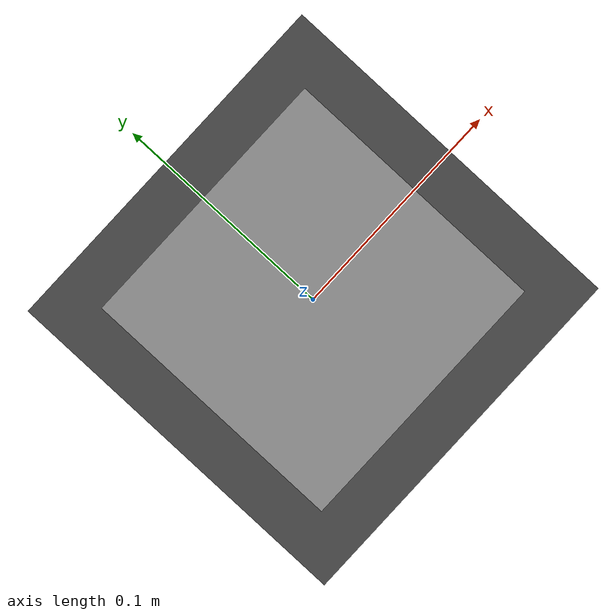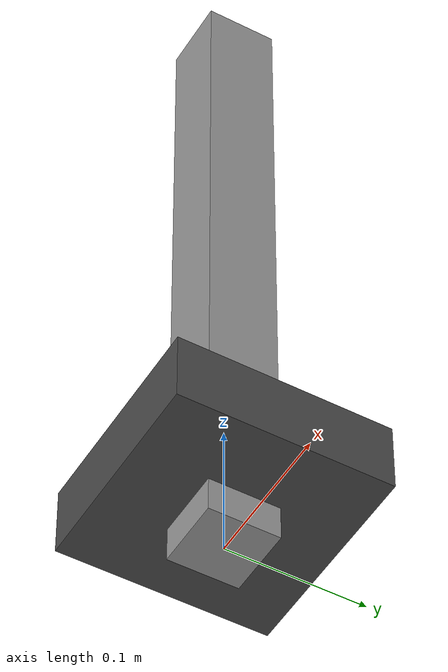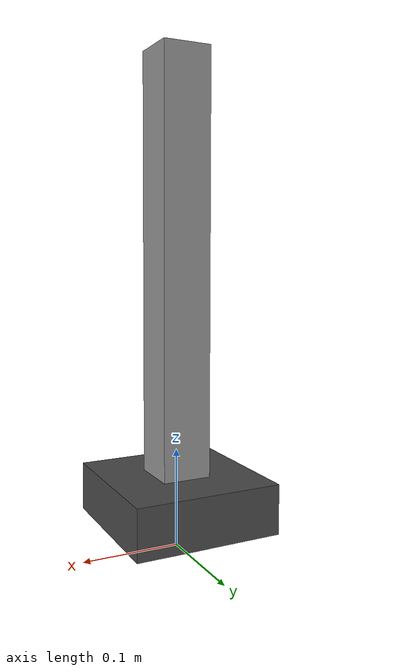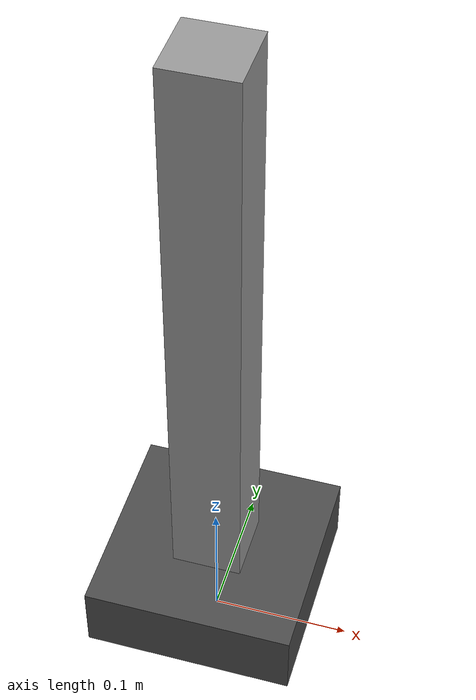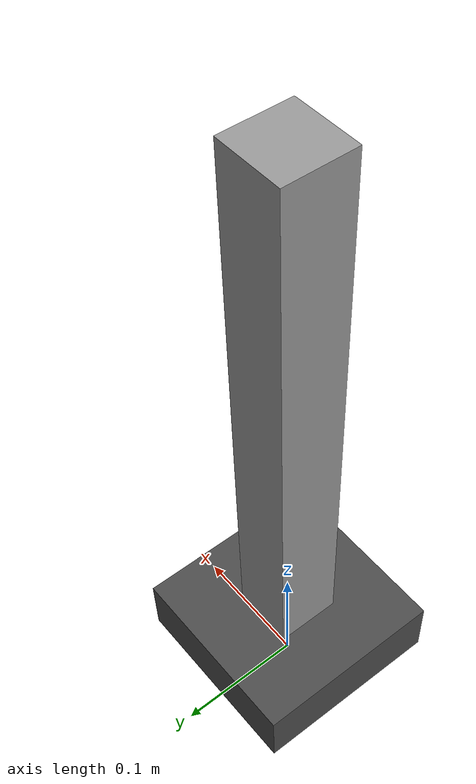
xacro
<?xml version="1.0"?>
<robot name="linear_guide_system" xmlns:xacro="http://www.ros.org/wiki/xacro">

  <!-- Parameters -->
  <xacro:property name="column_height" value="0.5"/>
  <xacro:property name="column_width"  value="0.05"/>
  <xacro:property name="base_height"   value="0.05"/>
  <xacro:property name="base_width"    value="0.15"/>

  <!-- Materials -->
  <material name="gray">
    <color rgba="0.6 0.6 0.6 1.0"/>
  </material>
  <material name="dark_gray">
    <color rgba="0.3 0.3 0.3 1.0"/>
  </material>

  <!-- World anchor link -->
  <link name="base_footprint"/>

  <!-- Column -->
  <link name="linear_guide_column">
    <visual>
      <origin xyz="0 0 ${column_height/2}" rpy="0 0 0"/>
      <geometry>
        <box size="${column_width} ${column_width} ${column_height}"/>
      </geometry>
      <material name="gray"/>
    </visual>
    <collision>
      <origin xyz="0 0 ${column_height/2}" rpy="0 0 0"/>
      <geometry>
        <box size="${column_width} ${column_width} ${column_height}"/>
      </geometry>
    </collision>
    <inertial>
      <mass value="2.0"/>
      <origin xyz="0 0 ${column_height/2}" rpy="0 0 0"/>
      <inertia ixx="0.01" ixy="0" ixz="0"
               iyy="0.01" iyz="0"
               izz="0.01"/>
    </inertial>
  </link>

  <!-- Moving base -->
  <link name="linear_guide_base">
    <visual>
      <origin xyz="0 0 ${base_height/2}" rpy="0 0 0"/>
      <geometry>
        <box size="${base_width} ${base_width} ${base_height}"/>
      </geometry>
      <material name="dark_gray"/>
    </visual>
    <collision>
      <origin xyz="0 0 ${base_height/2}" rpy="0 0 0"/>
      <geometry>
        <box size="${base_width} ${base_width} ${base_height}"/>
      </geometry>
    </collision>
    <inertial>
      <mass value="1.0"/>
      <origin xyz="0 0 ${base_height/2}" rpy="0 0 0"/>
      <inertia ixx="0.005" ixy="0" ixz="0"
               iyy="0.005" iyz="0"
               izz="0.005"/>
    </inertial>
  </link>

  <!-- Joints -->
  <joint name="linear_guide_column_fixed" type="fixed">
    <parent link="base_footprint"/>
    <child link="linear_guide_column"/>
    <origin xyz="0 0 0" rpy="0 0 0"/>
  </joint>

  <joint name="linear_guide_prismatic_joint" type="prismatic">
    <parent link="linear_guide_column"/>
    <child link="linear_guide_base"/>
    <origin xyz="0 0 ${base_height/2}" rpy="0 0 0"/>
    <axis xyz="0 0 1"/>
    <limit lower="0.0" upper="0.5" effort="50.0" velocity="0.2"/>
    <dynamics damping="0.1" friction="0.1"/>
  </joint>

  <!-- ros2_control -->
  <ros2_control name="linear_guide_system" type="system">
    <hardware>
      <plugin>gazebo_ros2_control/GazeboSystem</plugin>
    </hardware>
    <joint name="linear_guide_prismatic_joint">
      <command_interfaces>
        <command_interface name="position"/>
      </command_interfaces>
      <state_interfaces>
        <state_interface name="position"/>
        <state_interface name="velocity"/>
      </state_interfaces>
    </joint>
  </ros2_control>

</robot>
